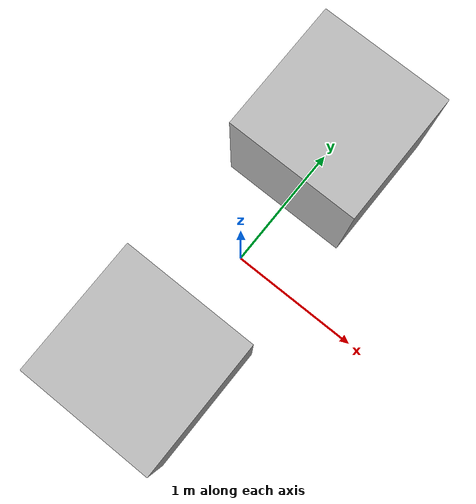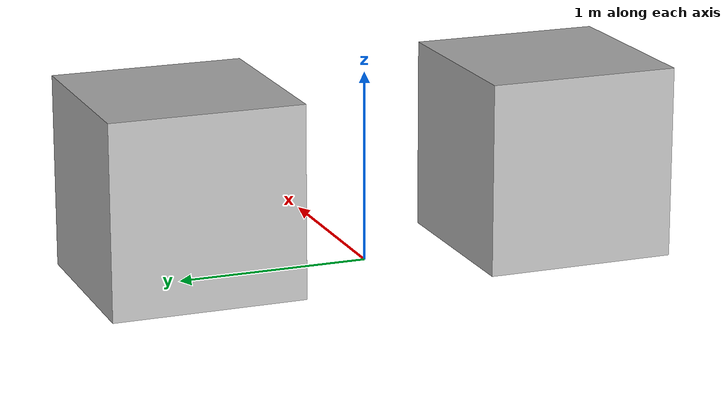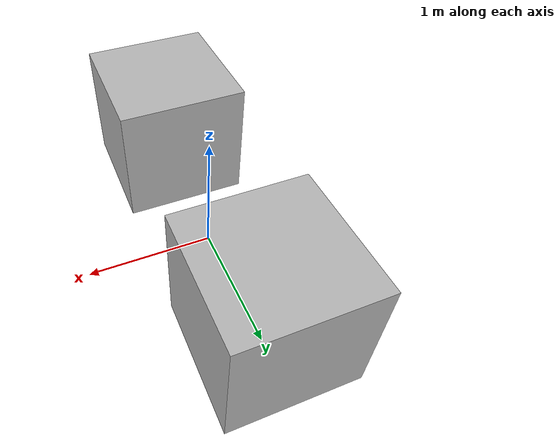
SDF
<?xml version="1.0" ?>
<sdf version="1.4">
  <model name='multiple_visuals'>
    <pose>0 0 0 0 0 0</pose>
    <link name='link'>
      <pose>0 0 0 0 0 0</pose>
        <inertial>
          <mass>1.</mass>
        </inertial>
        <visual name='foo'>
          <pose>0 1 0.5 0 0 0</pose>
          <geometry>
            <box>
              <size>1. 1. 1.</size>
            </box>
          </geometry>
          <material/>
        </visual>
        <visual name='bar'>
          <pose>0 -1 0.5 0 0 0</pose>
          <geometry>
            <box>
              <size>1. 1. 1.</size>
            </box>
          </geometry>
          <material/>
        </visual>
        <collision name='foo'>
          <geometry>
            <box>
              <size>1. 1. 1.</size>
            </box>
          </geometry>
        </collision>
    </link>
    <static>1</static>
  </model>
</sdf>
